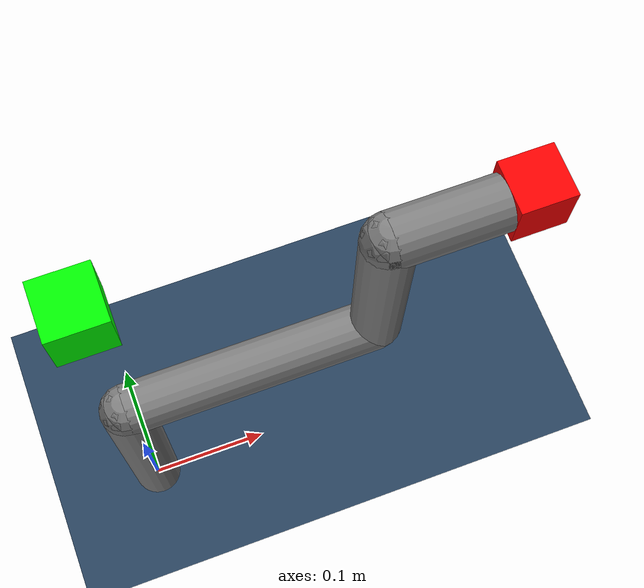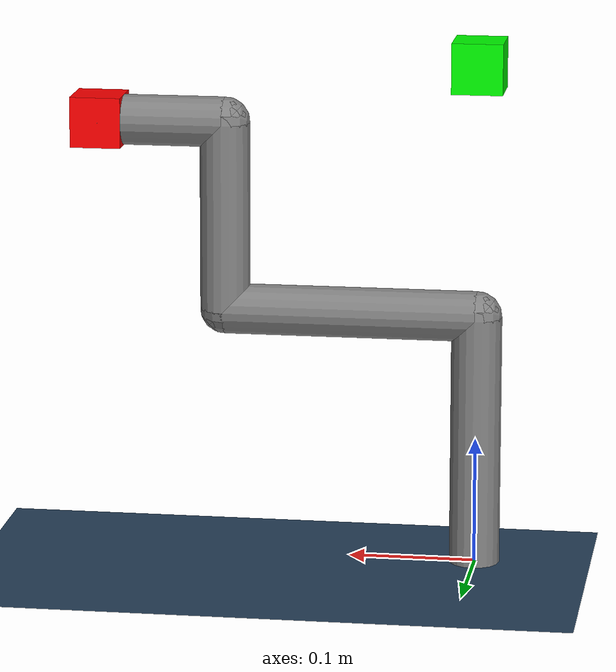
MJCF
<!--
 SPDX-License-Identifier: MIT
 SPDX-License-Identifier: MIT
-->

<mujoco>
  <asset>
    <texture name="grid" type="2d" builtin="checker" rgb1=".1 .2 .3"
     rgb2=".2 .3 .4" width="300" height="300" mark="none"/>
    <material name="grid" texture="grid" texrepeat="6 6"
     texuniform="true" reflectance=".2"/>
     <material name="wall" rgba='.5 .5 .5 1'/>
  </asset>

  <option gravity="0 0 0">
    <flag contact="disable"/>
  </option>

  <default>
    <geom type="capsule" size=".02 .02 .02" />
    <joint type="hinge" damping=".02"/>
  </default>

  <worldbody>
    <light name="light" pos="0 0 1"/>
    <geom name="ground" type="plane" size=".5 .5 10" material="grid"/>
    <camera name="y" pos="0 -.8 .6" xyaxes="1 0 0 0 1 2"/>
    <camera name="x" pos="-.8 0 .6" xyaxes="0 -1 0 1 0 2"/>

    <geom fromto="0 0 0 0 0 .2" />
    <body pos="0 0 .2">
      <joint axis="0 0 1"/>
      <joint axis="0 1 0"/>
      <geom fromto="0 0 0 .2 0 0" />
      <body pos=".2 0 0">
        <joint axis="1 0 0"/>
        <joint axis="0 1 0"/>
        <geom fromto="0 0 0 0 0 .15" />
        <body pos="0 0 .15">
          <joint axis="0 0 1"/>
          <joint axis="0 1 0"/>
          <geom fromto="0 0 0 .1 0 0"/>
          <geom name="fingertip" type="box" pos=".1 0 0" rgba="1 0 0 1" />
        </body>
      </body>
    </body>

    <geom name="target" type="box" rgba="0 1 0 1" pos="0 0 0.4" />

  </worldbody>

</mujoco>
